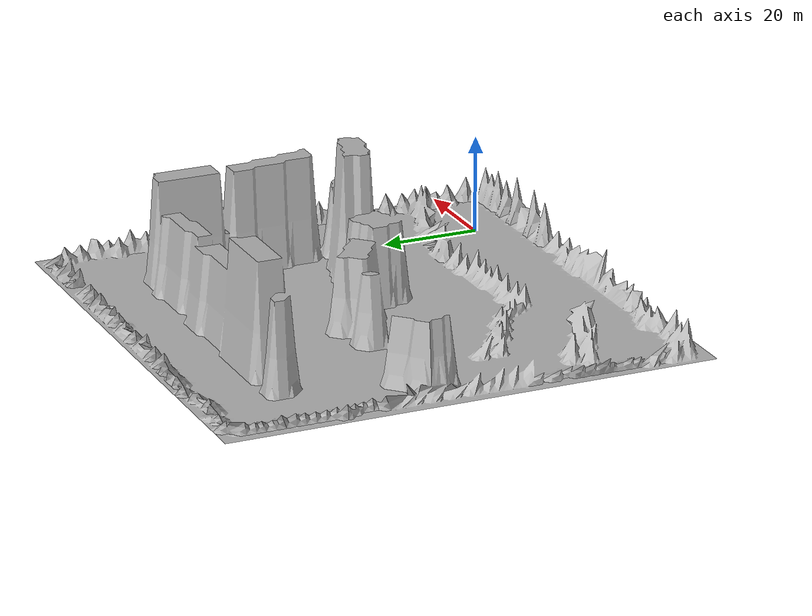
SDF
<sdf version='1.6'>
  <world name='default'>
    <include>
      <uri>model://sun</uri>
    </include>

    <include>
      <name>terrain_1</name>
      <uri>model://rough</uri>
      <pose>0 0 0 0 0 0</pose>
    </include>

    <gui fullscreen='0'>
      <camera name='user_camera'>
        <pose frame=''>9.0 -12.0 6.0 0.0 0.3 2.2</pose>
        <view_controller>orbit</view_controller>
        <projection_type>perspective</projection_type>
      </camera>
    </gui>

  </world>
</sdf>

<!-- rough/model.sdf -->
<sdf version="1.5">
  <model name="rough">
    <pose>0 0 0 0 0 0</pose>
    <static>true</static>
    <link name="body">
      <visual name="visual">
        <geometry>
          <mesh><uri>model://rough/media/rough.dae</uri></mesh>
        </geometry>
	<material>
          <script>
            <uri>model://rough/media/scripts</uri>
            <uri>model://rough/media/Textures</uri>
            <name>RepeatedGrass/Diffuse</name>
          </script>
        </material>
      </visual>
      <collision name="collision">
        <geometry>
          <mesh><uri>model://rough/media/rough.dae</uri></mesh>
        </geometry>
      </collision>
    </link>
  </model>
</sdf>
